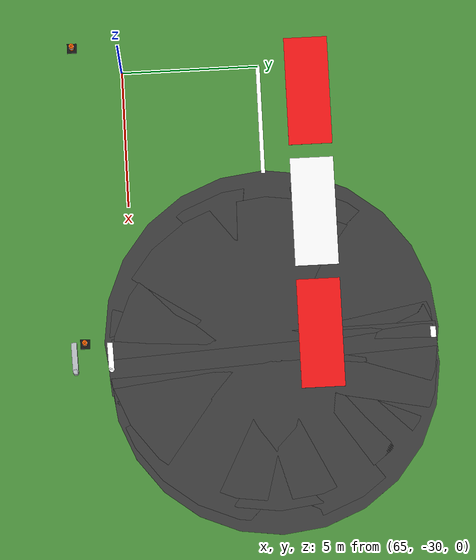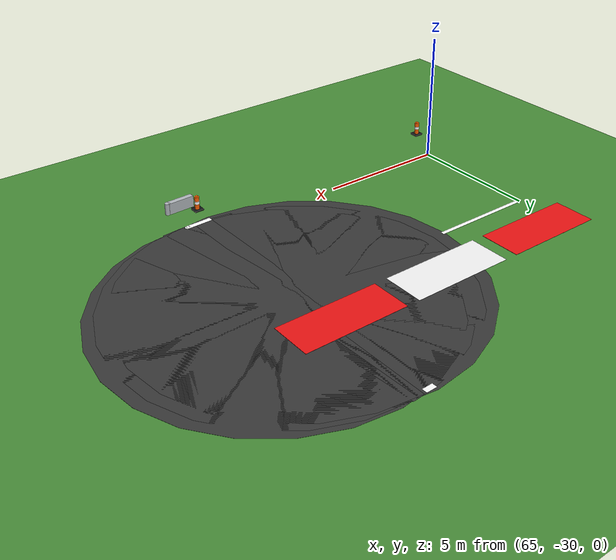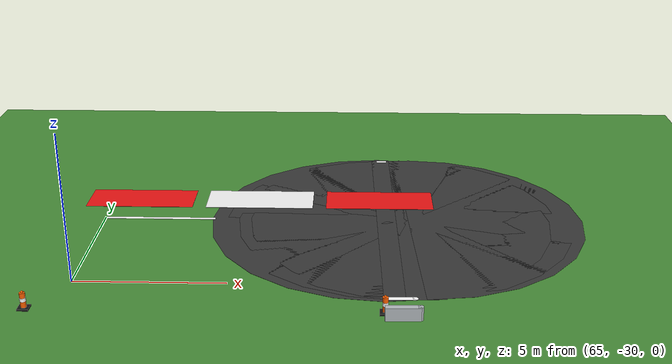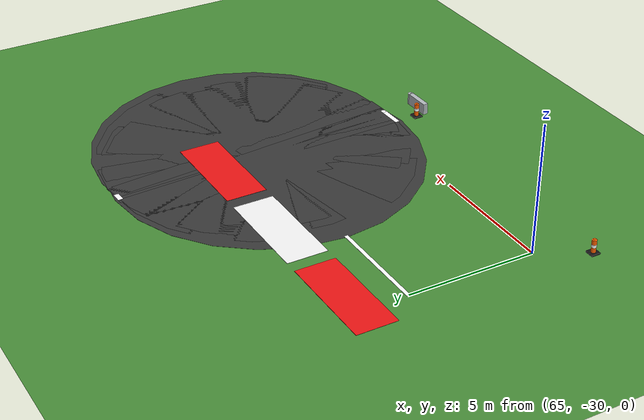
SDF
<sdf version="1.6">
 <world name="sem_silesia_ring_2026">
  <model name="ground_plane">
   <static>true</static>
   <link name="link">
    <collision name="collision">
     <geometry><plane><normal>0 0 1</normal><size>600 600</size></plane></geometry>
     <surface><friction><ode><mu>0.6</mu><mu2>0.6</mu2></ode></friction></surface>
    </collision>
    <visual name="visual">
     <geometry><plane><normal>0 0 1</normal><size>600 600</size></plane></geometry>
     <material><ambient>0.28 0.55 0.22 1</ambient><diffuse>0.28 0.55 0.22 1</diffuse></material>
    </visual>
   </link>
  </model>
  <model name="road_R_s0">
   <static>true</static>
   <pose>75.2182 -24.9981 0.0030 0 0 0.0175</pose>
   <link name="link">
    <visual name="v">
     <geometry><box><size>0.6957 12.0000 0.0060</size></box></geometry>
     <material><ambient>0.22 0.22 0.22 1</ambient><diffuse>0.22 0.22 0.22 1</diffuse></material>
    </visual>
    <collision name="c">
     <geometry><box><size>0.6957 12.0000 0.0060</size></box></geometry>
     <surface><friction><ode><mu>0.9</mu><mu2>0.9</mu2></ode></friction></surface>
    </collision>
   </link>
  </model>
  <model name="road_R_jnt1">
   <static>true</static>
   <pose>75.4362 -24.9924 0.0030 0 0 0</pose>
   <link name="link">
    <visual name="v">
     <geometry><cylinder><radius>6.0000</radius><length>0.0060</length></cylinder></geometry>
     <material><ambient>0.22 0.22 0.22 1</ambient><diffuse>0.22 0.22 0.22 1</diffuse></material>
    </visual>
    <collision name="c">
     <geometry><cylinder><radius>6.0000</radius><length>0.0060</length></cylinder></geometry>
     <surface><friction><ode><mu>0.9</mu><mu2>0.9</mu2></ode></friction></surface>
    </collision>
   </link>
  </model>
  <model name="road_R_s1">
   <static>true</static>
   <pose>75.6542 -24.9829 0.0030 0 0 0.0524</pose>
   <link name="link">
    <visual name="v">
     <geometry><box><size>0.6957 12.0000 0.0060</size></box></geometry>
     <material><ambient>0.22 0.22 0.22 1</ambient><diffuse>0.22 0.22 0.22 1</diffuse></material>
    </visual>
    <collision name="c">
     <geometry><box><size>0.6957 12.0000 0.0060</size></box></geometry>
     <surface><friction><ode><mu>0.9</mu><mu2>0.9</mu2></ode></friction></surface>
    </collision>
   </link>
  </model>
  <model name="road_R_jnt2">
   <static>true</static>
   <pose>75.8720 -24.9696 0.0030 0 0 0</pose>
   <link name="link">
    <visual name="v">
     <geometry><cylinder><radius>6.0000</radius><length>0.0060</length></cylinder></geometry>
     <material><ambient>0.22 0.22 0.22 1</ambient><diffuse>0.22 0.22 0.22 1</diffuse></material>
    </visual>
    <collision name="c">
     <geometry><cylinder><radius>6.0000</radius><length>0.0060</length></cylinder></geometry>
     <surface><friction><ode><mu>0.9</mu><mu2>0.9</mu2></ode></friction></surface>
    </collision>
   </link>
  </model>
  <model name="road_R_s2">
   <static>true</static>
   <pose>76.0894 -24.9524 0.0030 0 0 0.0873</pose>
   <link name="link">
    <visual name="v">
     <geometry><box><size>0.6957 12.0000 0.0060</size></box></geometry>
     <material><ambient>0.22 0.22 0.22 1</ambient><diffuse>0.22 0.22 0.22 1</diffuse></material>
    </visual>
    <collision name="c">
     <geometry><box><size>0.6957 12.0000 0.0060</size></box></geometry>
     <surface><friction><ode><mu>0.9</mu><mu2>0.9</mu2></ode></friction></surface>
    </collision>
   </link>
  </model>
  <model name="road_R_jnt3">
   <static>true</static>
   <pose>76.3066 -24.9315 0.0030 0 0 0</pose>
   <link name="link">
    <visual name="v">
     <geometry><cylinder><radius>6.0000</radius><length>0.0060</length></cylinder></geometry>
     <material><ambient>0.22 0.22 0.22 1</ambient><diffuse>0.22 0.22 0.22 1</diffuse></material>
    </visual>
    <collision name="c">
     <geometry><cylinder><radius>6.0000</radius><length>0.0060</length></cylinder></geometry>
     <surface><friction><ode><mu>0.9</mu><mu2>0.9</mu2></ode></friction></surface>
    </collision>
   </link>
  </model>
  <model name="jnt_br">
   <static>true</static>
   <pose>75.0000 -25.0000 0.0030 0 0 0</pose>
   <link name="link">
    <visual name="v">
     <geometry><cylinder><radius>6.1000</radius><length>0.0060</length></cylinder></geometry>
     <material><ambient>0.22 0.22 0.22 1</ambient><diffuse>0.22 0.22 0.22 1</diffuse></material>
    </visual>
    <collision name="c">
     <geometry><cylinder><radius>6.1000</radius><length>0.0060</length></cylinder></geometry>
     <surface><friction><ode><mu>0.9</mu><mu2>0.9</mu2></ode></friction></surface>
    </collision>
   </link>
  </model>
  <model name="wl_Ro_s0">
   <static>true</static>
   <pose>75.4817 -30.8937 0.0050 0 0 0.0262</pose>
   <link name="link">
    <visual name="v">
     <geometry><box><size>1.0185 0.2000 0.0040</size></box></geometry>
     <material><ambient>1 1 1 1</ambient><diffuse>1 1 1 1</diffuse></material>
    </visual>
    <collision name="c">
     <geometry><box><size>1.0185 0.2000 0.0040</size></box></geometry>
     <surface><friction><ode><mu>0.9</mu><mu2>0.9</mu2></ode></friction></surface>
    </collision>
   </link>
  </model>
  <model name="wl_Ro_jnt1">
   <static>true</static>
   <pose>75.9630 -30.8748 0.0050 0 0 0</pose>
   <link name="link">
    <visual name="v">
     <geometry><cylinder><radius>0.1000</radius><length>0.0040</length></cylinder></geometry>
     <material><ambient>1 1 1 1</ambient><diffuse>1 1 1 1</diffuse></material>
    </visual>
    <collision name="c">
     <geometry><cylinder><radius>0.1000</radius><length>0.0040</length></cylinder></geometry>
     <surface><friction><ode><mu>0.9</mu><mu2>0.9</mu2></ode></friction></surface>
    </collision>
   </link>
  </model>
  <model name="wl_Ri_s0">
   <static>true</static>
   <pose>75.1728 -19.0977 0.0050 0 0 0.0262</pose>
   <link name="link">
    <visual name="v">
     <geometry><box><size>0.4008 0.2000 0.0040</size></box></geometry>
     <material><ambient>1 1 1 1</ambient><diffuse>1 1 1 1</diffuse></material>
    </visual>
    <collision name="c">
     <geometry><box><size>0.4008 0.2000 0.0040</size></box></geometry>
     <surface><friction><ode><mu>0.9</mu><mu2>0.9</mu2></ode></friction></surface>
    </collision>
   </link>
  </model>
  <model name="cd_s2_9">
   <static>true</static>
   <pose>67.0000 -25.0000 0.0050 0 0 0.0000</pose>
   <link name="link">
    <visual name="v">
     <geometry><box><size>4.0000 0.1500 0.0080</size></box></geometry>
     <material><ambient>1 1 1 1</ambient><diffuse>1 1 1 1</diffuse></material>
    </visual>
    <collision name="c">
     <geometry><box><size>4.0000 0.1500 0.0080</size></box></geometry>
     <surface><friction><ode><mu>0.9</mu><mu2>0.9</mu2></ode></friction></surface>
    </collision>
   </link>
  </model>
  <model name="kerb_exit_0">
   <static>true</static>
   <pose>75.0000 -23.2000 0.0120 0 0 0.0000</pose>
   <link name="link">
    <visual name="v">
     <geometry><box><size>4.0000 1.6000 0.0120</size></box></geometry>
     <material><ambient>0.92 0.08 0.08 1</ambient><diffuse>0.92 0.08 0.08 1</diffuse></material>
    </visual>
    <collision name="c">
     <pose>0 0 -0.0060 0 0 0</pose>
     <geometry><box><size>4.0000 1.6000 0.0010</size></box></geometry>
     <surface><friction><ode><mu>0.9</mu><mu2>0.9</mu2></ode></friction></surface>
    </collision>
   </link>
  </model>
  <model name="kerb_exit_1">
   <static>true</static>
   <pose>70.5000 -23.2000 0.0120 0 0 0.0000</pose>
   <link name="link">
    <visual name="v">
     <geometry><box><size>4.0000 1.6000 0.0120</size></box></geometry>
     <material><ambient>0.96 0.96 0.96 1</ambient><diffuse>0.96 0.96 0.96 1</diffuse></material>
    </visual>
    <collision name="c">
     <pose>0 0 -0.0060 0 0 0</pose>
     <geometry><box><size>4.0000 1.6000 0.0010</size></box></geometry>
     <surface><friction><ode><mu>0.9</mu><mu2>0.9</mu2></ode></friction></surface>
    </collision>
   </link>
  </model>
  <model name="kerb_exit_2">
   <static>true</static>
   <pose>66.0000 -23.2000 0.0120 0 0 0.0000</pose>
   <link name="link">
    <visual name="v">
     <geometry><box><size>4.0000 1.6000 0.0120</size></box></geometry>
     <material><ambient>0.92 0.08 0.08 1</ambient><diffuse>0.92 0.08 0.08 1</diffuse></material>
    </visual>
    <collision name="c">
     <pose>0 0 -0.0060 0 0 0</pose>
     <geometry><box><size>4.0000 1.6000 0.0010</size></box></geometry>
     <surface><friction><ode><mu>0.9</mu><mu2>0.9</mu2></ode></friction></surface>
    </collision>
   </link>
  </model>
  <model name="arm_Ro_s0">
   <static>true</static>
   <pose>75.5157 -32.1932 0.2250 0 0 0.0262</pose>
   <link name="link">
    <visual name="v">
     <geometry><box><size>1.0866 0.2000 0.4500</size></box></geometry>
     <material><ambient>0.70 0.72 0.74 1</ambient><diffuse>0.70 0.72 0.74 1</diffuse></material>
    </visual>
    <collision name="c">
     <geometry><box><size>1.0866 0.2000 0.4500</size></box></geometry>
     <surface><friction><ode><mu>0.9</mu><mu2>0.9</mu2></ode></friction></surface>
    </collision>
   </link>
  </model>
  <model name="arm_Ro_jnt1">
   <static>true</static>
   <pose>76.0310 -32.1730 0.2250 0 0 0</pose>
   <link name="link">
    <visual name="v">
     <geometry><cylinder><radius>0.1000</radius><length>0.4500</length></cylinder></geometry>
     <material><ambient>0.70 0.72 0.74 1</ambient><diffuse>0.70 0.72 0.74 1</diffuse></material>
    </visual>
    <collision name="c">
     <geometry><cylinder><radius>0.1000</radius><length>0.4500</length></cylinder></geometry>
     <surface><friction><ode><mu>0.9</mu><mu2>0.9</mu2></ode></friction></surface>
    </collision>
   </link>
  </model>
  <model name="cn_s2s_64">
   <static>true</static>
   <pose>64.0000 -31.8000 0 0 0 0</pose>
   <link name="link">
    <visual name="base">
     <pose>0 0 0.03 0 0 0</pose>
     <geometry><box><size>0.35 0.35 0.06</size></box></geometry>
     <material><ambient>0.08 0.08 0.08 1</ambient><diffuse>0.08 0.08 0.08 1</diffuse></material>
    </visual>
    <visual name="body">
     <pose>0 0 0.30 0 0 0</pose>
     <geometry><cylinder><radius>0.09</radius><length>0.50</length></cylinder></geometry>
     <material><ambient>1.0 0.38 0.0 1</ambient><diffuse>1.0 0.38 0.0 1</diffuse></material>
    </visual>
    <visual name="stripe">
     <pose>0 0 0.32 0 0 0</pose>
     <geometry><cylinder><radius>0.095</radius><length>0.12</length></cylinder></geometry>
     <material><ambient>1 1 1 1</ambient><diffuse>1 1 1 1</diffuse></material>
    </visual>
    <visual name="tip">
     <pose>0 0 0.57 0 0 0</pose>
     <geometry><sphere><radius>0.04</radius></sphere></geometry>
     <material><ambient>1.0 0.38 0.0 1</ambient><diffuse>1.0 0.38 0.0 1</diffuse></material>
    </visual>
    <collision name="c">
     <pose>0 0 0.28 0 0 0</pose>
     <geometry><cylinder><radius>0.09</radius><length>0.56</length></cylinder></geometry>
    </collision>
   </link>
  </model>
  <model name="cn_Ro_0">
   <static>true</static>
   <pose>75.0000 -31.8000 0 0 0 0</pose>
   <link name="link">
    <visual name="base">
     <pose>0 0 0.03 0 0 0</pose>
     <geometry><box><size>0.35 0.35 0.06</size></box></geometry>
     <material><ambient>0.08 0.08 0.08 1</ambient><diffuse>0.08 0.08 0.08 1</diffuse></material>
    </visual>
    <visual name="body">
     <pose>0 0 0.30 0 0 0</pose>
     <geometry><cylinder><radius>0.09</radius><length>0.50</length></cylinder></geometry>
     <material><ambient>1.0 0.38 0.0 1</ambient><diffuse>1.0 0.38 0.0 1</diffuse></material>
    </visual>
    <visual name="stripe">
     <pose>0 0 0.32 0 0 0</pose>
     <geometry><cylinder><radius>0.095</radius><length>0.12</length></cylinder></geometry>
     <material><ambient>1 1 1 1</ambient><diffuse>1 1 1 1</diffuse></material>
    </visual>
    <visual name="tip">
     <pose>0 0 0.57 0 0 0</pose>
     <geometry><sphere><radius>0.04</radius></sphere></geometry>
     <material><ambient>1.0 0.38 0.0 1</ambient><diffuse>1.0 0.38 0.0 1</diffuse></material>
    </visual>
    <collision name="c">
     <pose>0 0 0.28 0 0 0</pose>
     <geometry><cylinder><radius>0.09</radius><length>0.56</length></cylinder></geometry>
    </collision>
   </link>
  </model>
 </world>
</sdf>
